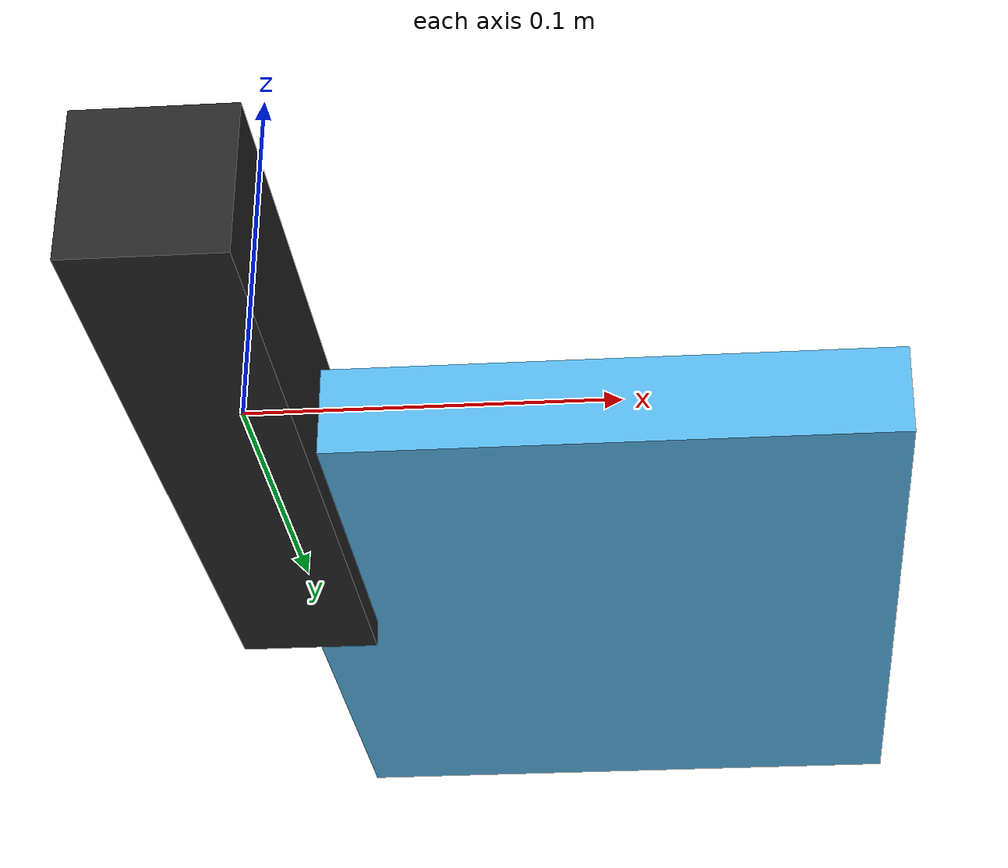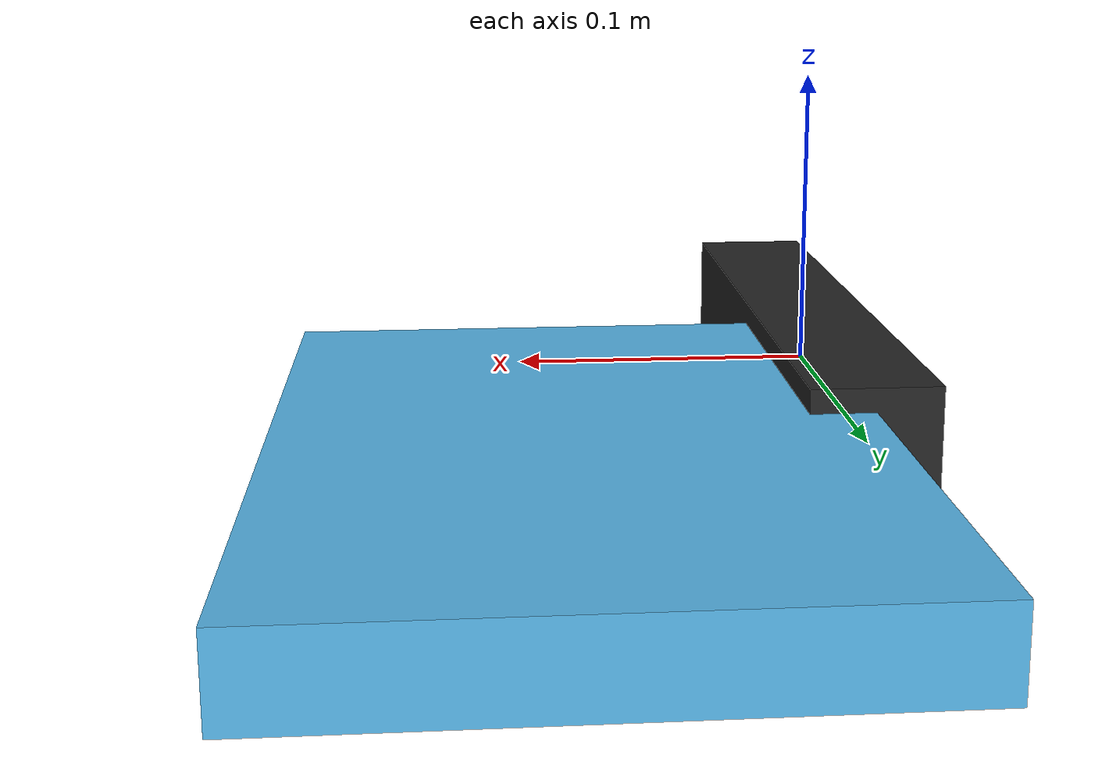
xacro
<?xml version="1.0" ?>

<robot name="industrial_kinect_calibration" xmlns:xacro="http://ros.org/wiki/xacro">
    <xacro:include filename="$(find industrial_extrinsic_cal)/urdf/asus_sensor_cal_macro.xacro" />

    <link name="world" />

    <link name="target_frame" >
      <visual>
        <origin xyz="0.0875  0.1225 0" />
        <geometry>
          <box size="0.175 0.245 0.025" />
        </geometry>
      </visual>
    </link>

    <joint name="world_2_cal_target" type="fixed" >
      <parent link="world" />
	    <child link="target_frame" />
	    <origin rpy="0 0 0" xyz="0 0 0" />
    </joint>

    <xacro:asus_sensor_definitions prefix="kinect" parent_link="world" />

</robot>

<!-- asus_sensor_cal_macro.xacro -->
<robot xmlns:xacro="http://ros.org/wiki/xacro">

     <xacro:include filename="$(find industrial_extrinsic_cal)/urdf/calibration_transform_macro.xacro"/>

     <xacro:property name="asus_length" value="0.220"/>
     <xacro:property name="asus_width" value="0.040"/>
     <xacro:property name="asus_height" value="0.040"/>

     <xacro:macro name="asus_sensor_definitions" params="prefix parent_link">

	<material name="${prefix}dark_silver">
		<color rgba="0.15 0.15 0.15 1"/>
	</material>

	<!-- sensor links -->

	<link name="${prefix}_link"/>

	<link name="${prefix}_frame">
		<visual>
			<origin rpy="0 0 0" xyz="0 0 0"/>
			<geometry>
				<box size="${asus_width} ${asus_length} ${asus_height}"/>
			</geometry>
			<material name="${prefix}dark_silver"/>
		</visual>
		<collision>
			<origin rpy="0 0 0" xyz="0 0 0"/>
			<geometry>
				<box size="${asus_width} ${asus_length} ${asus_height}"/>
			</geometry>
		</collision>
	</link>
		<link name="${prefix}_ir_link">
		<visual>
		<origin rpy="0 0 0" xyz="0 0 0"/>
		<geometry>
			<sphere radius="0.0005"/>
		</geometry>
		</visual>
	</link>
	<link name="${prefix}_rgb_link">
		<visual>
			<origin rpy="0 0 0" xyz="0 0 0"/>
			<geometry>
				<sphere radius="0.0005"/>
			</geometry>
		</visual>
	</link>
	<link name="${prefix}_rgb_frame"/>

	<link name="${prefix}_ir_optical_frame"/>
	<link name="${prefix}_rgb_optical_frame"/>
	<!-- end of sensor links -->

	<!-- attatchment joint to world or a robot -->
               <!-- Replaces the fixed joint destined for calibration by the calibration definition -->
	<xacro:calibration_definitions child_link="${prefix}_link" parent_link="${parent_link}" />

		<!-- sensor joints -->
	<joint name="${prefix}_frame_joint" type="fixed">
		<parent link="${prefix}_link"/>
		<child link="${prefix}_frame"/>
		<origin rpy="0 0 0" xyz="0 0 0"/>
	</joint>
	<joint name="${prefix}_ir_joint" type="fixed">
		<parent link="${prefix}_frame"/>
		<child link="${prefix}_ir_link"/>
		<origin rpy="0 0 0" xyz="0 0.05 0"/>
	</joint>
	<joint name="${prefix}_ir_optical_frame_joint" type="fixed">
		<parent link="${prefix}_ir_link"/>
		<child link="${prefix}_ir_optical_frame"/>
		<origin rpy="-1.57 0 -1.57" xyz="0 0 0"/>
	</joint>
	<joint name="${prefix}_rgb_joint" type="fixed">
		<parent link="${prefix}_ir_link"/>
		<child link="${prefix}_rgb_link"/>
		<origin rpy="0 0 0" xyz="0 -0.03 0"/>
	</joint>
	<joint name="${prefix}_rgb_frame_joint" type="fixed">
		<parent link="${prefix}_rgb_optical_frame"/>
		<child link="${prefix}_rgb_frame"/>
		<origin rpy="0 0 0" xyz="0 0.0 0"/>
        </joint>
	<joint name="${prefix}_rgb_optical_frame_joint" type="fixed">
		<parent link="${prefix}_rgb_link"/>
		<child link="${prefix}_rgb_optical_frame"/>
		<origin rpy="-1.57 0 -1.57" xyz="0 0 0"/>
	</joint>
	<!-- end of sensor joints -->

     </xacro:macro>

</robot>

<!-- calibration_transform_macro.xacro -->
<robot name="calibration_xform" xmlns:xacro="http://ros.org/wiki/xacro">
  <xacro:macro name="calibration_definitions" params="child_link parent_link">
    <link name="${child_link}_x_trans">
      <visual>
        <origin rpy="0 0 0" xyz="0 0 0"/>
        <geometry>
          <sphere radius="0.0005"/>
        </geometry>
      </visual>
    </link>
    <link name="${child_link}_y_trans"/>
    <link name="${child_link}_z_trans"/>
    <link name="${child_link}_pitch"/>
    <link name="${child_link}_yaw"/>

    <joint name="${child_link}_x_joint" type="prismatic">
      <parent link="${parent_link}"/>
      <child  link="${child_link}_x_trans"/>
      <origin xyz="0 0 0" rpy="0 0 0"/>
      <axis xyz="1 0 0" rpy="0 0 0"/>
      <limit lower="-1.0" upper="1.0" effort="30" velocity="0.0508"/>
    </joint>

    <joint name="${child_link}_y_joint" type="prismatic">
      <parent link="${child_link}_x_trans"/>
      <child  link="${child_link}_y_trans"/>
      <origin xyz="0 0 0" rpy="0 0 0"/>
      <axis xyz="0 1 0" rpy="0 0 0"/>
      <limit lower="-1.0" upper="1.0" effort="30" velocity="0.0508"/>
    </joint>

    <joint name="${child_link}_z_joint" type="prismatic">
      <parent link="${child_link}_y_trans"/>
      <child  link="${child_link}_z_trans"/>
      <origin xyz="0 0 0" rpy="0 0 0"/>
      <axis xyz="0 0 1" rpy="0 0 0"/>
      <limit lower="-1.0" upper="1.0" effort="30" velocity="0.0508"/>
    </joint>

    <joint name="${child_link}_yaw_joint" type="revolute">
      <parent link="${child_link}_z_trans"/>
      <child  link="${child_link}_yaw"/>
      <origin xyz="0 0 0" rpy="0 0 0"/>
      <limit lower="-6.2832" upper="6.2832" effort="2" velocity="10"/>
      <axis xyz="0 0 1"/>
    </joint>

    <joint name="${child_link}_pitch_joint" type="revolute">
      <parent link="${child_link}_yaw"/>
      <child  link="${child_link}_pitch"/>
      <origin xyz="0 0 0" rpy="0 0 0"/>
      <limit lower="-6.2832" upper="6.2832" effort="2" velocity="10"/>
      <axis xyz="0 1 0"/>
    </joint>

    <joint name="${child_link}_roll_joint" type="revolute">
      <parent link="${child_link}_pitch"/>
      <child  link="${child_link}"/>
      <origin xyz="0 0 0" rpy="0 0 0"/>
      <limit lower="-6.2832" upper="6.2832" effort="2" velocity="10"/>
      <axis xyz="1 0 0"/>
    </joint>

  </xacro:macro>
</robot>
